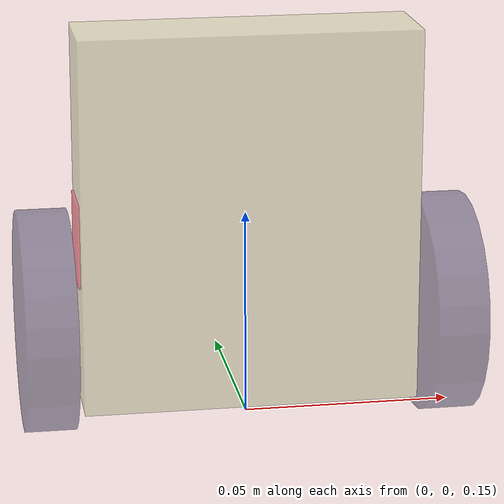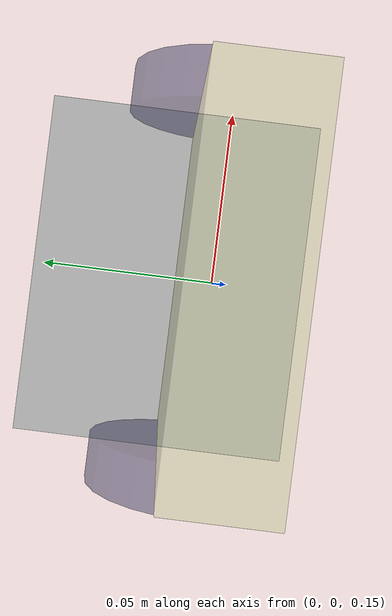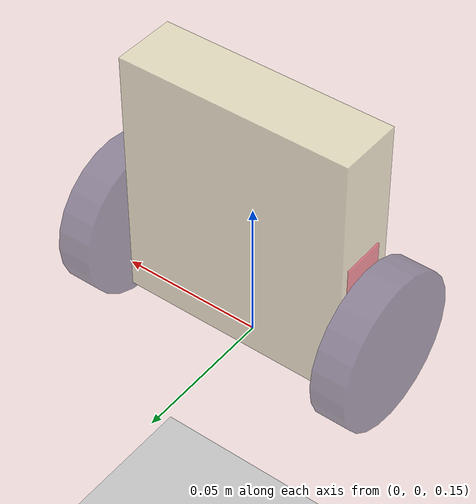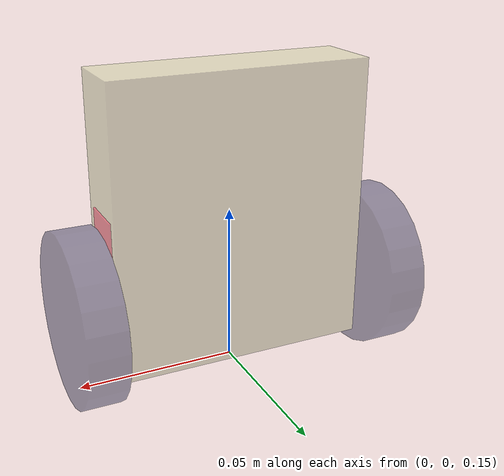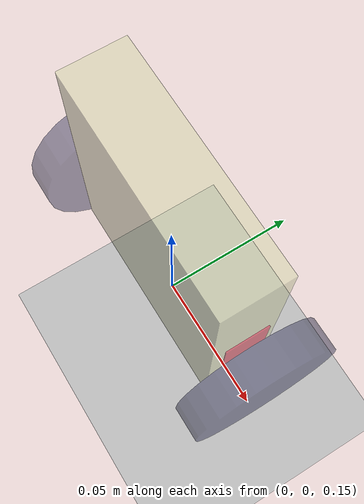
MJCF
<mujoco>
    <asset>
        <texture name="tex-checker" type="2d" builtin="checker" rgb1=".7 .7 .7" rgb2=".8 .8 .8"
                 width="100"
                 height="100"/>
        <material name="color-dark" rgba="0.23 0.12 0.17 .5"/>
        <material name="color-red" rgba="0.86 0.09 0.18 .5"/>
        <material name="color-vanilla" rgba="0.86 0.87 0.67 .5"/>
        <material name="color-gray" rgba="0.37 0.46 0.56 .5"/>
        <material name="color-blue" rgba="0.22 0.22 0.38 .5"/>
        <material name="mat-plane" texture="tex-checker" texrepeat="10 10" texuniform="true"/>
    </asset>

    <worldbody>
        <light diffuse=".5 .5 .5" pos="0 0 3" dir="0 0 -1"/>
        <geom type="plane" size="1 1 0.1" material="mat-plane"/>
        <body name="chassis" pos="0 0 0.2">
            <joint type="free"/>
            <geom name="chassis-geom" type="box" size=".04 .011 .045" material="color-vanilla"
                  mass="0.027"/>
            <body name="left-wheel" pos="-0.048 0.002 -0.025">
                <joint name="left-wheel-joint" type="hinge" axis="1 0 0" damping="0.0002"
                       frictionloss="0.00005"/>
                <geom name="left-wheel-geom" type="cylinder" size="0.0265 0.006"
                      material="color-blue" mass="0.16"
                      euler="0 90 0"/>
            </body>
            <body name="right-wheel" pos="0.048 0.002 -0.025">
                <joint name="right-wheel-joint" type="hinge" axis="1 0 0" damping="0.0002"
                       frictionloss="0.00005"/>
                <geom type="cylinder" size="0.0265 0.006" material="color-blue"
                      mass="0.16"
                      euler="0 90 0"/>
            </body>
            <body name="battery" pos="0 0 -0.032">
                <geom type="cylinder" size="0.009 0.0325" material="color-dark" mass="0.047"
                      euler="0 90 0" contype="1"
                      conaffinity="0"/>
            </body>
            <body name="left-motor-body" pos="-0.028 0.001 -0.005">
                <geom type="box" size="0.0125 0.0075 0.010" material="color-red" mass="0.017"
                      contype="1"
                      conaffinity="0"/>
            </body>
            <body name="right-motor-body" pos="0.028 0.001 -0.005">
                <geom type="box" size="0.0125 0.0075 0.010" material="color-red" mass="0.017"
                      contype="1"
                      conaffinity="0"/>
            </body>
            <site name="imu" pos="0 0 0.035" size="0.001" rgba="1 0 0 0.5"/>
        </body>
    </worldbody>
    <sensor>
        <accelerometer name="imu_accel" site="imu"/>
        <gyro name="imu_gyro" site="imu"/>
    </sensor>
    <actuator>
        <!-- Motor actuators-->
        <motor name="left-motor" joint="left-wheel-joint" gear="0.0096" ctrllimited="true"
               ctrlrange="-1.0 1.0"/>
        <motor name="right-motor" joint="right-wheel-joint" gear="0.0096" ctrllimited="true"
               ctrlrange="-1.0 1.0"
        />
    </actuator>
</mujoco>
